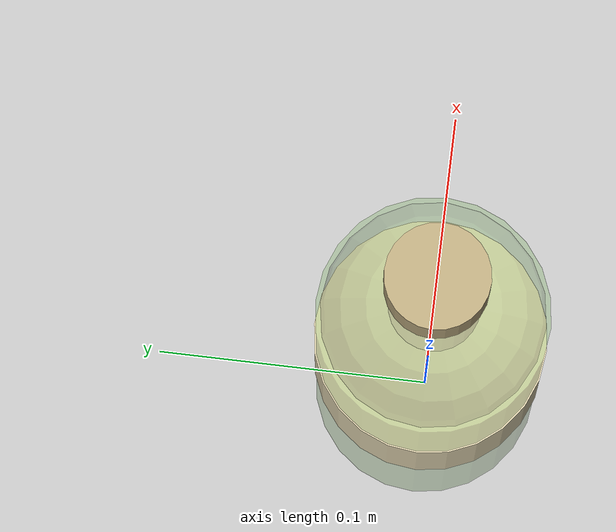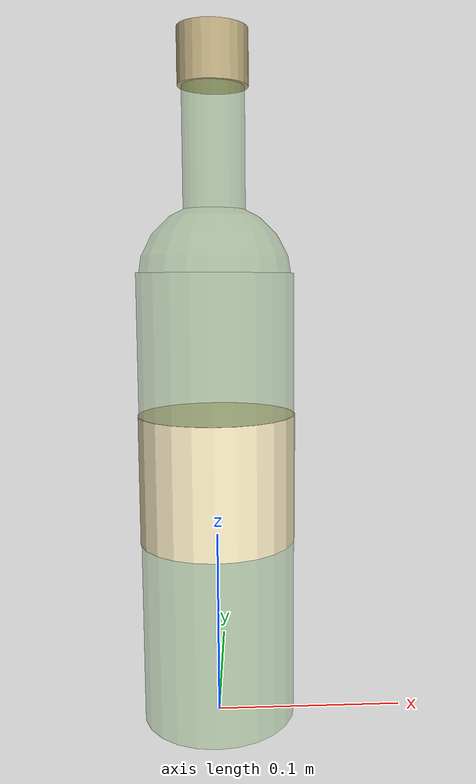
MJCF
<mujoco model="elegant_glass_bottle">
  <asset>
    <material name="glass_green" rgba="0.48 0.66 0.38 0.38"/>
    <material name="wine_red" rgba="0.34 0.02 0.015 0.78"/>
    <material name="label_warm" rgba="0.92 0.87 0.72 1.0"/>
    <material name="cork" rgba="0.74 0.67 0.50 1.0"/>
  </asset>
  <worldbody>
    <body name="elegant_glass_bottle_body" pos="0 0 0">
      <geom
        name="bottle_body_collision"
        type="cylinder"
        size="0.041 0.120"
        pos="0 0 0.120"
        mass="0.18"
        material="glass_green"
        friction="0.85 0.01 0.001"
      />
      <geom
        name="bottle_shoulder_collision"
        type="sphere"
        size="0.040"
        pos="0 0 0.236"
        mass="0.035"
        material="glass_green"
        friction="0.85 0.01 0.001"
      />
      <geom
        name="bottle_neck_collision"
        type="cylinder"
        size="0.016 0.045"
        pos="0 0 0.288"
        mass="0.025"
        material="glass_green"
        friction="0.85 0.01 0.001"
      />
      <geom
        name="bottle_wine_core"
        type="cylinder"
        size="0.034 0.082"
        pos="0 0 0.098"
        contype="0"
        conaffinity="0"
        mass="0.07"
        material="wine_red"
      />
      <geom
        name="bottle_label_visual"
        type="cylinder"
        size="0.0415 0.034"
        pos="0 0 0.132"
        contype="0"
        conaffinity="0"
        mass="0.001"
        material="label_warm"
      />
      <geom
        name="bottle_cork_collision"
        type="cylinder"
        size="0.018 0.014"
        pos="0 0 0.347"
        mass="0.008"
        material="cork"
        friction="0.85 0.01 0.001"
      />
    </body>
  </worldbody>
</mujoco>
